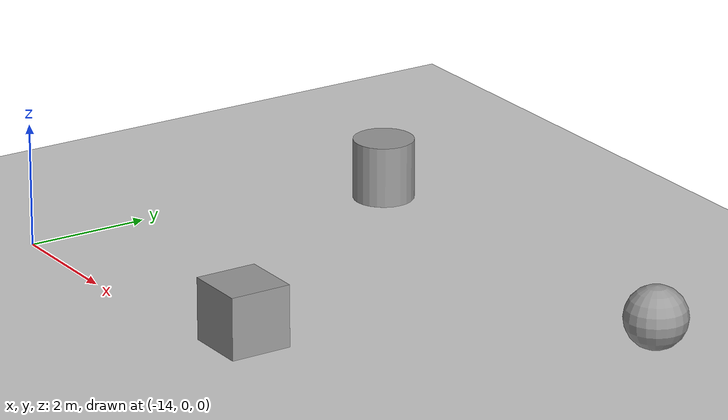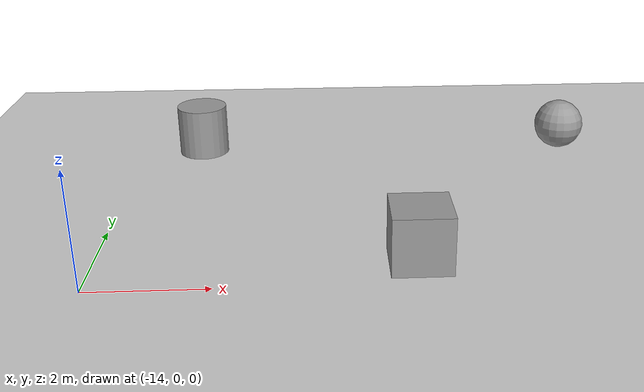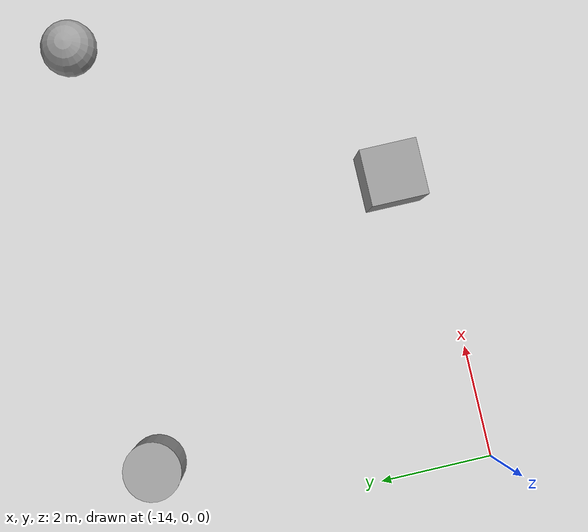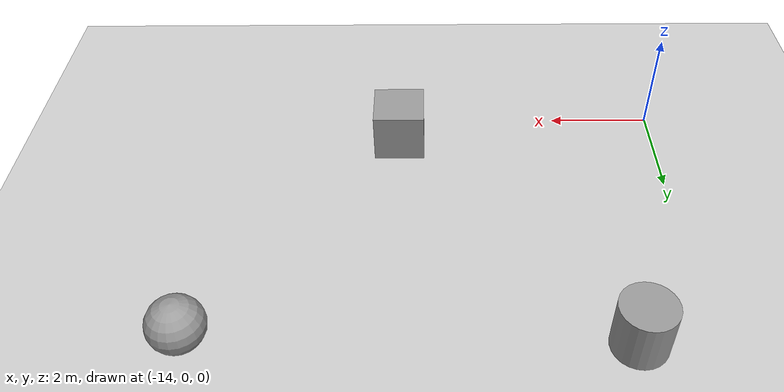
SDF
<sdf version="1.6">
 <world name="default">
  <model name="ground_plane">
   <static>1</static>
   <link name="link">
    <collision name="collision">
     <geometry><plane><normal>0 0 1</normal><size>100 100</size></plane></geometry>
     <surface><friction><ode><mu>100</mu><mu2>50</mu2></ode></friction></surface>
    </collision>
    <visual name="visual">
     <cast_shadows>0</cast_shadows>
     <geometry><plane><normal>0 0 1</normal><size>100 100</size></plane></geometry>
     <material>
      <script><uri>file://media/materials/scripts/gazebo.material</uri><name>Gazebo/Grey</name></script>
     </material>
    </visual>
   </link>
  </model>
  <model name="unit_cylinder">
   <pose>-12.7803 5.80228 0.499993 -3e-06 1e-06 0</pose>
   <link name="link">
    <inertial>
     <mass>1</mass>
     <inertia><ixx>0.145833</ixx><ixy>0</ixy><ixz>0</ixz><iyy>0.145833</iyy><iyz>0</iyz><izz>0.125</izz></inertia>
    </inertial>
    <collision name="collision">
     <geometry><cylinder><radius>0.5</radius><length>1</length></cylinder></geometry>
    </collision>
    <visual name="visual">
     <geometry><cylinder><radius>0.5</radius><length>1</length></cylinder></geometry>
     <material>
      <script><name>Gazebo/Grey</name><uri>file://media/materials/scripts/gazebo.material</uri></script>
     </material>
    </visual>
   </link>
  </model>
  <model name="unit_box">
   <pose>-8.75915 0.670145 0.499995 -6e-06 3e-06 0</pose>
   <link name="link">
    <inertial>
     <mass>1</mass>
     <inertia>
      <ixx>0.166667</ixx>
      <ixy>0</ixy>
      <ixz>0</ixz>
      <iyy>0.166667</iyy>
      <iyz>0</iyz>
      <izz>0.166667</izz>
     </inertia>
    </inertial>
    <collision name="collision"><geometry><box><size>1 1 1</size></box></geometry></collision>
    <visual name="visual">
     <geometry><box><size>1 1 1</size></box></geometry>
     <material>
      <script><name>Gazebo/Grey</name><uri>file://media/materials/scripts/gazebo.material</uri></script>
     </material>
    </visual>
   </link>
  </model>
  <model name="unit_sphere">
   <pose>-5.26408 5.70012 0.5 0 -0 0</pose>
   <link name="link">
    <inertial>
     <mass>1</mass>
     <inertia><ixx>0.1</ixx><ixy>0</ixy><ixz>0</ixz><iyy>0.1</iyy><iyz>0</iyz><izz>0.1</izz></inertia>
    </inertial>
    <collision name="collision"><geometry><sphere><radius>0.5</radius></sphere></geometry></collision>
    <visual name="visual">
     <geometry><sphere><radius>0.5</radius></sphere></geometry>
     <material>
      <script><name>Gazebo/Grey</name><uri>file://media/materials/scripts/gazebo.material</uri></script>
     </material>
    </visual>
   </link>
  </model>
 </world>
</sdf>
